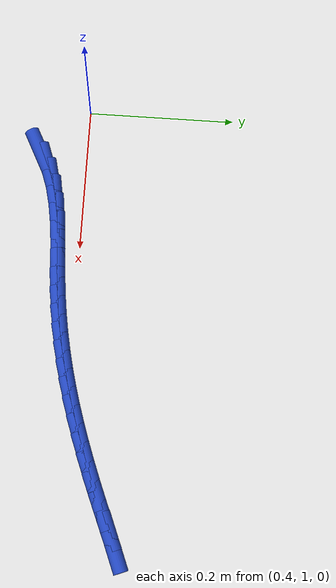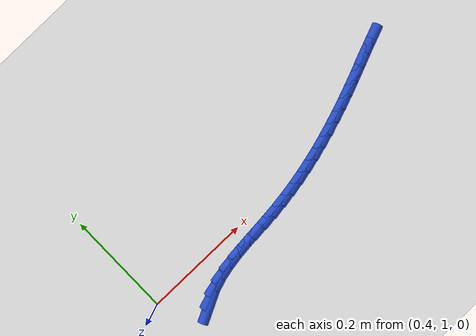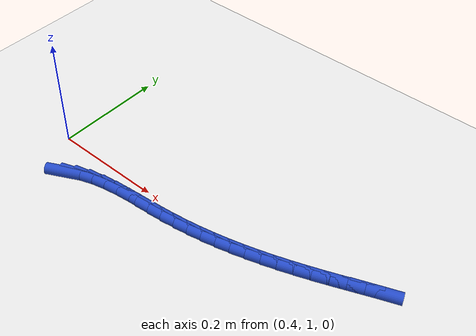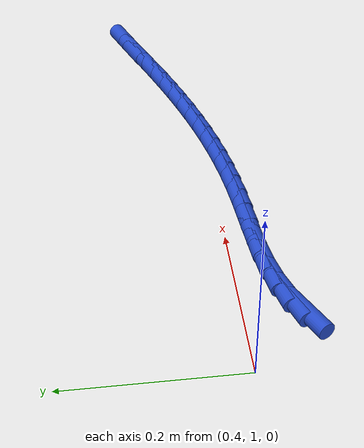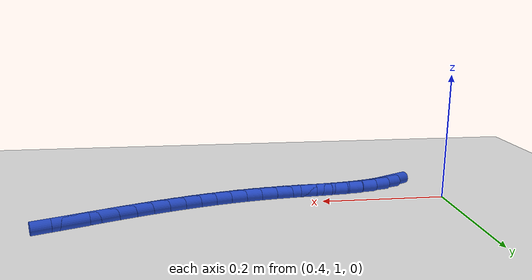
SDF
<sdf version="1.6">
 <world name="default">
  <model name="ground_plane">
   <static>1</static>
   <link name="link">
    <collision name="collision">
     <geometry><plane><normal>0 0 1</normal><size>100 100</size></plane></geometry>
     <surface><friction><ode><mu>100</mu><mu2>50</mu2></ode></friction></surface>
    </collision>
    <visual name="visual">
     <cast_shadows>0</cast_shadows>
     <geometry><plane><normal>0 0 1</normal><size>100 100</size></plane></geometry>
     <material>
      <script><uri>file://media/materials/scripts/gazebo.material</uri><name>Gazebo/WhiteGlow</name></script>
     </material>
    </visual>
   </link>
  </model>
  <model name="line">
   <link name="link_42">
    <pose>0.47225702561548877 0.9384911618581371 0.01 0 1.57 0.46972101029280466</pose>
    <collision name="collision">
     <geometry><cylinder><radius>0.01</radius><length>0.08</length></cylinder></geometry>
    </collision>
    <visual name="visual">
     <material>
      <script><name>Gazebo/Blue</name><uri>file://media/materials/scripts/gazebo.material</uri></script>
     </material>
     <geometry><cylinder><radius>0.01</radius><length>0.08</length></cylinder></geometry>
    </visual>
   </link>
   <link name="link_43">
    <pose>0.4933393461675404 0.9491928633648444 0.01 0 1.57 0.3335622631278988</pose>
    <collision name="collision">
     <geometry><cylinder><radius>0.01</radius><length>0.08</length></cylinder></geometry>
    </collision>
    <visual name="visual">
     <material>
      <script><name>Gazebo/Blue</name><uri>file://media/materials/scripts/gazebo.material</uri></script>
     </material>
     <geometry><cylinder><radius>0.01</radius><length>0.08</length></cylinder></geometry>
    </visual>
   </link>
   <link name="link_44">
    <pose>0.5163444330852082 0.957164354799033 0.01 0 1.57 0.23120673856762497</pose>
    <collision name="collision">
     <geometry><cylinder><radius>0.01</radius><length>0.08</length></cylinder></geometry>
    </collision>
    <visual name="visual">
     <material>
      <script><name>Gazebo/Blue</name><uri>file://media/materials/scripts/gazebo.material</uri></script>
     </material>
     <geometry><cylinder><radius>0.01</radius><length>0.08</length></cylinder></geometry>
    </visual>
   </link>
   <link name="link_45">
    <pose>0.5408724470964811 0.9629386569151468 0.01 0 1.57 0.15888170208426286</pose>
    <collision name="collision">
     <geometry><cylinder><radius>0.01</radius><length>0.08</length></cylinder></geometry>
    </collision>
    <visual name="visual">
     <material>
      <script><name>Gazebo/Blue</name><uri>file://media/materials/scripts/gazebo.material</uri></script>
     </material>
     <geometry><cylinder><radius>0.01</radius><length>0.08</length></cylinder></geometry>
    </visual>
   </link>
   <link name="link_46">
    <pose>0.5665235488732592 0.9670487905441177 0.01 0 1.57 0.11247343270974473</pose>
    <collision name="collision">
     <geometry><cylinder><radius>0.01</radius><length>0.08</length></cylinder></geometry>
    </collision>
    <visual name="visual">
     <material>
      <script><name>Gazebo/Blue</name><uri>file://media/materials/scripts/gazebo.material</uri></script>
     </material>
     <geometry><cylinder><radius>0.01</radius><length>0.08</length></cylinder></geometry>
    </visual>
   </link>
   <link name="link_47">
    <pose>0.5928978990874411 0.9700277765168769 0.01 0 1.57 0.08894295581526128</pose>
    <collision name="collision">
     <geometry><cylinder><radius>0.01</radius><length>0.08</length></cylinder></geometry>
    </collision>
    <visual name="visual">
     <material>
      <script><name>Gazebo/Blue</name><uri>file://media/materials/scripts/gazebo.material</uri></script>
     </material>
     <geometry><cylinder><radius>0.01</radius><length>0.08</length></cylinder></geometry>
    </visual>
   </link>
   <link name="link_48">
    <pose>0.6195956584109259 0.9724086356643556 0.01 0 1.57 0.08677021354866554</pose>
    <collision name="collision">
     <geometry><cylinder><radius>0.01</radius><length>0.08</length></cylinder></geometry>
    </collision>
    <visual name="visual">
     <material>
      <script><name>Gazebo/Blue</name><uri>file://media/materials/scripts/gazebo.material</uri></script>
     </material>
     <geometry><cylinder><radius>0.01</radius><length>0.08</length></cylinder></geometry>
    </visual>
   </link>
   <link name="link_49">
    <pose>0.6462169875156133 0.974724388817486 0.01 0 1.57 0.10562375270156373</pose>
    <collision name="collision">
     <geometry><cylinder><radius>0.01</radius><length>0.08</length></cylinder></geometry>
    </collision>
    <visual name="visual">
     <material>
      <script><name>Gazebo/Blue</name><uri>file://media/materials/scripts/gazebo.material</uri></script>
     </material>
     <geometry><cylinder><radius>0.01</radius><length>0.08</length></cylinder></geometry>
    </visual>
   </link>
   <link name="link_50">
    <pose>0.6723718752097325 0.977497285712734 0.01 0 1.57 0.13590932357505975</pose>
    <collision name="collision">
     <geometry><cylinder><radius>0.01</radius><length>0.08</length></cylinder></geometry>
    </collision>
    <visual name="visual">
     <material>
      <script><name>Gazebo/Blue</name><uri>file://media/materials/scripts/gazebo.material</uri></script>
     </material>
     <geometry><cylinder><radius>0.01</radius><length>0.08</length></cylinder></geometry>
    </visual>
   </link>
   <link name="link_51">
    <pose>0.6979077324628169 0.9809893745140837 0.01 0 1.57 0.16662600839541872</pose>
    <collision name="collision">
     <geometry><cylinder><radius>0.01</radius><length>0.08</length></cylinder></geometry>
    </collision>
    <visual name="visual">
     <material>
      <script><name>Gazebo/Blue</name><uri>file://media/materials/scripts/gazebo.material</uri></script>
     </material>
     <geometry><cylinder><radius>0.01</radius><length>0.08</length></cylinder></geometry>
    </visual>
   </link>
   <link name="link_52">
    <pose>0.7229158892675106 0.9851953816114157 0.01 0 1.57 0.19684295325530418</pose>
    <collision name="collision">
     <geometry><cylinder><radius>0.01</radius><length>0.08</length></cylinder></geometry>
    </collision>
    <visual name="visual">
     <material>
      <script><name>Gazebo/Blue</name><uri>file://media/materials/scripts/gazebo.material</uri></script>
     </material>
     <geometry><cylinder><radius>0.01</radius><length>0.08</length></cylinder></geometry>
    </visual>
   </link>
   <link name="link_53">
    <pose>0.7474988034220208 0.9900978379344654 0.01 0 1.57 0.22613128917392974</pose>
    <collision name="collision">
     <geometry><cylinder><radius>0.01</radius><length>0.08</length></cylinder></geometry>
    </collision>
    <visual name="visual">
     <material>
      <script><name>Gazebo/Blue</name><uri>file://media/materials/scripts/gazebo.material</uri></script>
     </material>
     <geometry><cylinder><radius>0.01</radius><length>0.08</length></cylinder></geometry>
    </visual>
   </link>
   <link name="link_54">
    <pose>0.7717589327245552 0.995679274412968 0.01 0 1.57 0.25407966554252204</pose>
    <collision name="collision">
     <geometry><cylinder><radius>0.01</radius><length>0.08</length></cylinder></geometry>
    </collision>
    <visual name="visual">
     <material>
      <script><name>Gazebo/Blue</name><uri>file://media/materials/scripts/gazebo.material</uri></script>
     </material>
     <geometry><cylinder><radius>0.01</radius><length>0.08</length></cylinder></geometry>
    </visual>
   </link>
   <link name="link_55">
    <pose>0.7957987349733203 1.0019222219766581 0.01 0 1.57 0.28031403623677137</pose>
    <collision name="collision">
     <geometry><cylinder><radius>0.01</radius><length>0.08</length></cylinder></geometry>
    </collision>
    <visual name="visual">
     <material>
      <script><name>Gazebo/Blue</name><uri>file://media/materials/scripts/gazebo.material</uri></script>
     </material>
     <geometry><cylinder><radius>0.01</radius><length>0.08</length></cylinder></geometry>
    </visual>
   </link>
   <link name="link_56">
    <pose>0.819720667966524 1.0088092115552716 0.01 0 1.57 0.3045140934398461</pose>
    <collision name="collision">
     <geometry><cylinder><radius>0.01</radius><length>0.08</length></cylinder></geometry>
    </collision>
    <visual name="visual">
     <material>
      <script><name>Gazebo/Blue</name><uri>file://media/materials/scripts/gazebo.material</uri></script>
     </material>
     <geometry><cylinder><radius>0.01</radius><length>0.08</length></cylinder></geometry>
    </visual>
   </link>
   <link name="link_57">
    <pose>0.8436271895023728 1.0163227740785428 0.01 0 1.57 0.32642487195838027</pose>
    <collision name="collision">
     <geometry><cylinder><radius>0.01</radius><length>0.08</length></cylinder></geometry>
    </collision>
    <visual name="visual">
     <material>
      <script><name>Gazebo/Blue</name><uri>file://media/materials/scripts/gazebo.material</uri></script>
     </material>
     <geometry><cylinder><radius>0.01</radius><length>0.08</length></cylinder></geometry>
    </visual>
   </link>
   <link name="link_58">
    <pose>0.8676207573790748 1.0244454404762078 0.01 0 1.57 0.34586287224030565</pose>
    <collision name="collision">
     <geometry><cylinder><radius>0.01</radius><length>0.08</length></cylinder></geometry>
    </collision>
    <visual name="visual">
     <material>
      <script><name>Gazebo/Blue</name><uri>file://media/materials/scripts/gazebo.material</uri></script>
     </material>
     <geometry><cylinder><radius>0.01</radius><length>0.08</length></cylinder></geometry>
    </visual>
   </link>
   <link name="link_59">
    <pose>0.8918038293948365 1.033159741678001 0.01 0 1.57 0.3627168683392079</pose>
    <collision name="collision">
     <geometry><cylinder><radius>0.01</radius><length>0.08</length></cylinder></geometry>
    </collision>
    <visual name="visual">
     <material>
      <script><name>Gazebo/Blue</name><uri>file://media/materials/scripts/gazebo.material</uri></script>
     </material>
     <geometry><cylinder><radius>0.01</radius><length>0.08</length></cylinder></geometry>
    </visual>
   </link>
   <link name="link_60">
    <pose>0.9162788633478655 1.0424482086136582 0.01 0 1.57 0.3769442014996162</pose>
    <collision name="collision">
     <geometry><cylinder><radius>0.01</radius><length>0.08</length></cylinder></geometry>
    </collision>
    <visual name="visual">
     <material>
      <script><name>Gazebo/Blue</name><uri>file://media/materials/scripts/gazebo.material</uri></script>
     </material>
     <geometry><cylinder><radius>0.01</radius><length>0.08</length></cylinder></geometry>
    </visual>
   </link>
   <link name="link_61">
    <pose>0.9411483170363688 1.0522933722129142 0.01 0 1.57 0.38824361382712885</pose>
    <collision name="collision">
     <geometry><cylinder><radius>0.01</radius><length>0.08</length></cylinder></geometry>
    </collision>
    <visual name="visual">
     <material>
      <script><name>Gazebo/Blue</name><uri>file://media/materials/scripts/gazebo.material</uri></script>
     </material>
     <geometry><cylinder><radius>0.01</radius><length>0.08</length></cylinder></geometry>
    </visual>
   </link>
   <link name="link_62">
    <pose>0.9665073764416161 1.0626653096304959 0.01 0 1.57 0.389977952783943</pose>
    <collision name="collision">
     <geometry><cylinder><radius>0.01</radius><length>0.08</length></cylinder></geometry>
    </collision>
    <visual name="visual">
     <material>
      <script><name>Gazebo/Blue</name><uri>file://media/materials/scripts/gazebo.material</uri></script>
     </material>
     <geometry><cylinder><radius>0.01</radius><length>0.08</length></cylinder></geometry>
    </visual>
   </link>
   <link name="link_63">
    <pose>0.9922936424413037 1.073264216443884 0.01 0 1.57 0.3760422464208623</pose>
    <collision name="collision">
     <geometry><cylinder><radius>0.01</radius><length>0.08</length></cylinder></geometry>
    </collision>
    <visual name="visual">
     <material>
      <script><name>Gazebo/Blue</name><uri>file://media/materials/scripts/gazebo.material</uri></script>
     </material>
     <geometry><cylinder><radius>0.01</radius><length>0.08</length></cylinder></geometry>
    </visual>
   </link>
  </model>
 </world>
</sdf>
